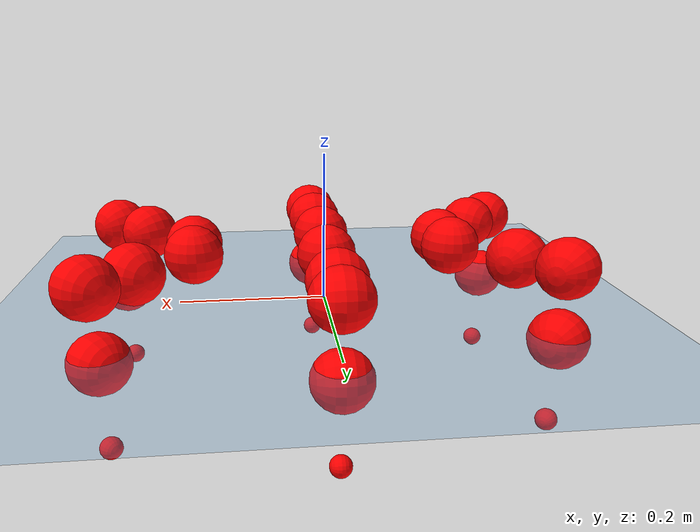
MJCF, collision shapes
<mujoco model="Golem">
  <compiler angle="radian" assetdir="assets" balanceinertia="true" inertiafromgeom="false"/>

  <option timestep="0.005" density="1.2" viscosity="2e-05"/>

  <size nkey="1"/>

  <visual>
    <quality shadowsize="8192"/>
    <map shadowclip="0.5"/>
  </visual>

  <default>
    <default class="/">
      <joint armature="0.01" damping="0.01" frictionloss="0.01"/>
      <geom contype="0" conaffinity="0" group="1" solref="-1000 -80"/>
      <site size="0.01 0.005 0.005" group="5"/>
      <general forcelimited="true" biastype="affine" gainprm="25" biasprm="0 -25 -0.5"/>
      <default class="visual">
        <geom type="mesh" group="2"/>
      </default>
      <default class="collision">
        <geom group="3"/>
      </default>
      <default class="foot">
        <geom size="0.01 0 0" condim="6" group="4" priority="1" solimp="0.015 1 0.01"/>
      </default>
      <default class="reward_collision_sphere">
        <geom group="5" rgba="1 0 0 1"/>
      </default>
    </default>
  </default>

  <asset>
    <texture type="skybox" colorspace="auto" name="//unnamed_texture_0" builtin="gradient" rgb1="0.95 0.95 0.95" rgb2="0.95 0.95 0.95" width="100" height="600"/>
    <texture type="2d" colorspace="auto" name="texplane" builtin="checker" rgb1="0.345 0.575 0.748" rgb2="0.345 0.575 0.748" markrgb="1 1 1" width="512" height="512"/>
    <material name="MatPlane" class="/" texture="texplane" texuniform="true" texrepeat="2 2" specular="0.9"/>
    <mesh name="body" class="/" file="body.stl" scale="0.001 0.001 0.001"/>
    <mesh name="coxa" class="/" file="coxa.stl" scale="0.001 0.001 0.001"/>
    <mesh name="femur" class="/" file="femur.stl" scale="0.001 0.001 0.001"/>
    <mesh name="tibia" class="/" file="tibia.stl" scale="0.001 0.001 0.001"/>
    <mesh name="tarsus" class="/" file="tarsus.stl" scale="0.001 0.001 0.001"/>
  </asset>

  <worldbody>
    <geom name="floor" class="/" size="100 100 0.125" type="plane" group="0" material="MatPlane"/>
    <light name="toplight_shadow" class="/" pos="0 0 5" dir="0.0990148 0.0990148 -0.990148" type="directional" ambient="0.04 0.04 0.04" diffuse="0.55 0.55 0.55" specular="0.12 0.12 0.12"/>
    <light name="toplight_fill" class="/" pos="0 0 5" dir="0.0990148 0.0990148 -0.990148" type="directional" castshadow="false" ambient="0.04 0.04 0.04" diffuse="0.3 0.3 0.3" specular="0.08 0.08 0.08"/>
    <body name="trunk" pos="0.00256138 -0.00138385 0.00152908" quat="1 0.00011166 -0.000279532 -0.000122059">
      <inertial pos="-0.00185348 -0.00215752 0.00196285" quat="0.999991 0.00244666 0.000507406 -0.00340351" mass="3.26458" diaginertia="0.0152139 0.000751998 0.0249898"/>
      <joint name="//unnamed_joint_0" type="free"/>
      <geom name="//unnamed_geom_1" class="/" pos="0 0 0.0764659" quat="1 0 0 0" type="mesh" rgba="0.9 0.9 0.9 1" mesh="body"/>
      <site name="imu" class="/" pos="0.134858 -0.00576369 0.11275" size="0.00961684"/>
      <camera name="track" class="/" pos="0 -1.19453 0" quat="0.707107 0.707107 0 0" mode="trackcom"/>
      <camera name="ego_camera" class="/" pos="0.142091 0 0.119478" quat="-0.5 -0.5 0.5 0.5"/>
      <body name="coxa_RR" pos="-0.193124 -0.0524159 0.0745766" quat="0.382649 -0.000317684 0.000339345 -0.923894">
        <inertial pos="0.000140321 0.00255567 -0.00199317" quat="0.999951 0.000917552 -0.00349718 -0.00919782" mass="0.179161" diaginertia="0.01592 0.00074236 0.0243039"/>
        <joint name="coxa_joint_RR" class="/" pos="0 0 0" axis="0.00244845 -0.000920293 -0.999997" range="-3.13352 3.14422" armature="0.00962371" damping="0.0193966" frictionloss="0.00870497"/>
        <geom name="//unnamed_geom_2" class="/" type="mesh" rgba="0.2 0.2 0.2 1" mesh="coxa"/>
        <geom name="//unnamed_geom_3" class="reward_collision_sphere" size="0.0384674" pos="-0.0327902 0 0"/>
        <body name="femur_RR" pos="0.0621644 0.00211449 -0.00033857" quat="0.499916 -0.500537 0.499855 0.499691">
          <inertial pos="-0.000254345 0.00143792 -0.00233618" quat="1 -0.000677655 0.000227317 -0.000114812" mass="0.17664" diaginertia="0.0154723 0.000749392 0.0240643"/>
          <joint name="femur_joint_RR" class="/" pos="0 0 0" axis="0.00106944 -0.00094319 -0.999999" range="-3.16089 3.17247" armature="0.00924698" damping="0.00969168" frictionloss="0.00939691"/>
          <geom name="//unnamed_geom_4" class="/" type="mesh" rgba="0.9 0.9 0.9 1" mesh="femur"/>
          <geom name="//unnamed_geom_5" class="reward_collision_sphere" size="0.0384674"/>
          <body name="tibia_RR" pos="0.00303163 -0.0648058 0.00338134" quat="-0.000209652 1 -0.000276425 0.000318624">
            <inertial pos="0.00191269 -0.000682287 0.00234392" quat="0.999959 -0.000403732 0.00896134 -0.00102918" mass="0.181825" diaginertia="0.0161064 0.000779046 0.0240309"/>
            <joint name="tibia_joint_RR" class="/" pos="0 0 0" axis="0.00255538 -0.0026578 0.999993" range="-3.18322 3.20995" armature="0.0084258" damping="0.0134422" frictionloss="0.010578"/>
            <geom name="//unnamed_geom_6" class="/" type="mesh" rgba="0.2 0.2 0.2 1" mesh="tibia"/>
            <geom name="//unnamed_geom_7" class="reward_collision_sphere" size="0.0384674"/>
            <body name="tarsus_RR" pos="0.0992468 0.00124068 -0.000953614" quat="1 0.000467851 -0.000332051 3.52571e-05">
              <inertial pos="0.066444 -0.00333798 0.000436291" quat="0.505909 0.499484 0.503025 0.491464" mass="0.169816" diaginertia="0.0149804 0.000740744 0.0239013"/>
              <joint name="tarsus_joint_RR" class="/" pos="0 0 0" axis="0.000344768 0.00110356 0.999999" range="-3.18553 3.12318" armature="0.0108801" damping="0.0435862" frictionloss="0.0105722"/>
              <geom name="//unnamed_geom_8" class="/" type="mesh" rgba="0.9 0.9 0.9 1" mesh="tarsus"/>
              <geom name="foot_1" class="foot" size="0.0103317" pos="0.122417 0 0" quat="0 -0.707107 0 0.707107"/>
              <geom name="//unnamed_geom_10" class="reward_collision_sphere" size="0.0384674"/>
              <geom name="//unnamed_geom_11" class="reward_collision_sphere" size="0.0144253" pos="0.117498 0 0"/>
              <site name="foot_1" class="foot" pos="0.122417 0 0" quat="0 -0.707107 0 0.707107" size="0.00961684"/>
            </body>
          </body>
        </body>
      </body>
      <body name="coxa_RM" pos="-0.00233044 -0.0766149 0.0791101" quat="0.707115 9.33522e-05 0.000492937 -0.707098">
        <inertial pos="-0.00107712 0.00232443 0.00307588" quat="0.999999 0.00025401 -0.000261339 0.00148004" mass="0.181235" diaginertia="0.0161537 0.000786248 0.025099"/>
        <joint name="coxa_joint_RM" class="/" pos="0 0 0" axis="-0.00433042 0.00807611 -0.999958" stiffness="0.0121109" range="-3.1865 3.08395" armature="0.0101049" damping="0.0339423" frictionloss="0.0111293"/>
        <geom name="//unnamed_geom_12" class="/" type="mesh" rgba="0.2 0.2 0.2 1" mesh="coxa"/>
        <geom name="//unnamed_geom_13" class="reward_collision_sphere" size="0.0384674" pos="-0.0327902 0 0"/>
        <body name="femur_RM" pos="0.059434 0.000919344 -0.000966068" quat="0.500793 -0.499475 0.500146 0.499585">
          <inertial pos="0.00107298 -0.00203414 0.00021122" quat="0.999916 0.00421102 -0.000296304 -0.0122228" mass="0.173214" diaginertia="0.0156307 0.000722797 0.0241932"/>
          <joint name="femur_joint_RM" class="/" pos="0 0 0" axis="-0.012897 0.00461464 -0.999906" range="-3.08776 3.09945" armature="0.00890586" damping="0.00790562" frictionloss="0.0096844"/>
          <geom name="//unnamed_geom_14" class="/" type="mesh" rgba="0.9 0.9 0.9 1" mesh="femur"/>
          <geom name="//unnamed_geom_15" class="reward_collision_sphere" size="0.0384674"/>
          <body name="tibia_RM" pos="0.000871238 -0.0621701 0.00107919" quat="7.12314e-05 1 9.55345e-06 -3.16556e-05">
            <inertial pos="0.0025285 0.00147621 0.00282875" quat="0.999912 0.0088452 0.00991366 -0.000491094" mass="0.176732" diaginertia="0.015712 0.000761326 0.0251824"/>
            <joint name="tibia_joint_RM" class="/" pos="0 0 0" axis="-0.000197452 2.67058e-05 1" range="-3.13592 3.18293" armature="0.0106516" damping="0" frictionloss="0.0103987"/>
            <geom name="//unnamed_geom_16" class="/" type="mesh" rgba="0.2 0.2 0.2 1" mesh="tibia"/>
            <geom name="//unnamed_geom_17" class="reward_collision_sphere" size="0.0384674"/>
            <body name="tarsus_RM" pos="0.0937839 -0.000663621 0.00317692" quat="0.999999 0.000901855 -0.000369642 -0.000815911">
              <inertial pos="0.0653512 0.00221411 -0.00174319" quat="0.500877 0.495004 0.502922 0.501161" mass="0.180333" diaginertia="0.0163079 0.00074949 0.0246793"/>
              <joint name="tarsus_joint_RM" class="/" pos="0 0 0" axis="-0.00781998 -0.00762719 0.99994" range="-3.13498 3.14622" armature="0.010377" damping="0.00366243" frictionloss="0.0103096"/>
              <geom name="//unnamed_geom_18" class="/" type="mesh" rgba="0.9 0.9 0.9 1" mesh="tarsus"/>
              <geom name="foot_2" class="foot" size="0.00962829" pos="0.122417 0 0" quat="0 -0.707107 0 0.707107"/>
              <geom name="//unnamed_geom_20" class="reward_collision_sphere" size="0.0384674"/>
              <geom name="//unnamed_geom_21" class="reward_collision_sphere" size="0.0144253" pos="0.117498 0 0"/>
              <site name="foot_2" class="foot" pos="0.122417 0 0" quat="0 -0.707107 0 0.707107" size="0.00961684"/>
            </body>
          </body>
        </body>
      </body>
      <body name="coxa_RF" pos="0.197749 -0.0488204 0.074519" quat="0.923813 -0.000459044 0.000135498 -0.382843">
        <inertial pos="-0.000630347 0.000199259 0.000817015" quat="0.999963 -0.00178898 0.0055715 -0.00631647" mass="0.178517" diaginertia="0.0150706 0.000777494 0.0245168"/>
        <joint name="coxa_joint_RF" class="/" pos="0 0 0" axis="0.00123299 0.00211373 -0.999997" range="-3.16684 3.10728" armature="0.00849801" damping="0.0256954" frictionloss="0.00911874"/>
        <geom name="//unnamed_geom_22" class="/" type="mesh" rgba="0.2 0.2 0.2 1" mesh="coxa"/>
        <geom name="//unnamed_geom_23" class="reward_collision_sphere" size="0.0384674" pos="-0.0327902 0 0"/>
        <body name="femur_RF" pos="0.0629443 0.00252376 -0.00016225" quat="0.499958 -0.49998 0.499546 0.500515">
          <inertial pos="-0.00082271 -0.00270858 -9.94679e-06" quat="0.99991 0.00358303 0.00737567 -0.0106164" mass="0.1725" diaginertia="0.0148199 0.000715012 0.0245623"/>
          <joint name="femur_joint_RF" class="/" pos="0 0 0" axis="-0.00251249 -0.0033898 -0.999991" range="-3.15637 3.15807" armature="0.00995462" damping="0.00502785" frictionloss="0.0108776"/>
          <geom name="//unnamed_geom_24" class="/" type="mesh" rgba="0.9 0.9 0.9 1" mesh="femur"/>
          <geom name="//unnamed_geom_25" class="reward_collision_sphere" size="0.0384674"/>
          <body name="tibia_RF" pos="0.00109552 -0.0681135 0.00153087" quat="0.000130476 1 -1.42439e-05 -4.99127e-05">
            <inertial pos="0.002497 0.00125616 -0.000508914" quat="0.99991 0.0105646 -0.00602137 0.00571614" mass="0.17523" diaginertia="0.0148068 0.000736757 0.0240869"/>
            <joint name="tibia_joint_RF" class="/" pos="0 0 0" axis="0.00090621 -0.00534911 0.999985" range="-3.11405 3.08822" armature="0.0106635" damping="0" frictionloss="0.00969571"/>
            <geom name="//unnamed_geom_26" class="/" type="mesh" rgba="0.2 0.2 0.2 1" mesh="tibia"/>
            <geom name="//unnamed_geom_27" class="reward_collision_sphere" size="0.0384674"/>
            <body name="tarsus_RF" pos="0.0996315 -0.00163581 -0.00265744" quat="0.999999 -0.000770701 -0.000565406 0.000326017">
              <inertial pos="0.0684156 0.00227688 -0.00246403" quat="0.488901 0.496112 0.505711 0.509024" mass="0.177166" diaginertia="0.0152041 0.000784265 0.0242401"/>
              <joint name="tarsus_joint_RF" class="/" pos="0 0 0" axis="0.000324411 0.000127122 1" stiffness="0.0187198" range="-3.18074 3.11219" armature="0.00789263" damping="0.0129249" frictionloss="0.00939666"/>
              <geom name="//unnamed_geom_28" class="/" type="mesh" rgba="0.9 0.9 0.9 1" mesh="tarsus"/>
              <geom name="foot_3" class="foot" size="0.00860944" pos="0.122417 0 0" quat="0 -0.707107 0 0.707107"/>
              <geom name="//unnamed_geom_30" class="reward_collision_sphere" size="0.0384674"/>
              <geom name="//unnamed_geom_31" class="reward_collision_sphere" size="0.0144253" pos="0.117498 0 0"/>
              <site name="foot_3" class="foot" pos="0.122417 0 0" quat="0 -0.707107 0 0.707107" size="0.00961684"/>
            </body>
          </body>
        </body>
      </body>
      <body name="coxa_LR" pos="-0.193555 0.0516061 0.0781034" quat="0.383031 0.000880519 0.000656349 0.923735">
        <inertial pos="-0.00257465 0.00255646 0.0038923" quat="1 -0.000282863 -6.26117e-05 0.000316277" mass="0.184152" diaginertia="0.016482 0.000764707 0.024955"/>
        <joint name="coxa_joint_LR" class="/" pos="0 0 0" axis="0.00993447 -0.00560359 -0.999935" range="-3.18348 3.09527" armature="0.0103632" damping="0.0179633" frictionloss="0.00866653"/>
        <geom name="//unnamed_geom_32" class="/" type="mesh" rgba="0.2 0.2 0.2 1" mesh="coxa"/>
        <geom name="//unnamed_geom_33" class="reward_collision_sphere" size="0.0384674" pos="-0.0327902 0 0"/>
        <body name="femur_LR" pos="0.0621665 5.93145e-05 0.0011927" quat="0.499793 -0.500198 0.499849 0.500161">
          <inertial pos="0.00279345 -0.000966931 0.00255429" quat="0.999945 0.00159796 -0.00959955 -0.00391363" mass="0.169953" diaginertia="0.0152833 0.000743126 0.0227345"/>
          <joint name="femur_joint_LR" class="/" pos="0 0 0" axis="0.011079 -0.00164287 0.999937" stiffness="0.0030633" range="-3.20102 3.14068" armature="0.0103154" damping="0.00885282" frictionloss="0.00890328"/>
          <geom name="//unnamed_geom_34" class="/" type="mesh" rgba="0.9 0.9 0.9 1" mesh="femur"/>
          <geom name="//unnamed_geom_35" class="reward_collision_sphere" size="0.0384674"/>
          <body name="tibia_LR" pos="-0.000914272 -0.0650025 -0.00105326" quat="-0.000899881 1 0.000302524 0.000297548">
            <inertial pos="-0.00120713 0.00253716 0.000646838" quat="0.999969 -0.00688081 -0.00127519 0.00346908" mass="0.176835" diaginertia="0.0156979 0.000776861 0.0241195"/>
            <joint name="tibia_joint_LR" class="/" pos="0 0 0" axis="0.00544707 0.00115139 -0.999985" range="-3.13713 3.17242" armature="0.00891042" damping="0.0343673" frictionloss="0.0102738"/>
            <geom name="//unnamed_geom_36" class="/" type="mesh" rgba="0.2 0.2 0.2 1" mesh="tibia"/>
            <geom name="//unnamed_geom_37" class="reward_collision_sphere" size="0.0384674"/>
            <body name="tarsus_LR" pos="0.0921024 0.00213685 0.00314142" quat="1 0.000218241 -0.00011199 -0.000321704">
              <inertial pos="0.0633754 -0.000672552 -0.000617735" quat="0.50206 0.498165 0.503524 0.496216" mass="0.177046" diaginertia="0.016439 0.000781735 0.0257291"/>
              <joint name="tarsus_joint_LR" class="/" pos="0 0 0" axis="0.00154965 -0.00672935 -0.999976" stiffness="0.00948174" range="-3.11987 3.12596" armature="0.00939037" damping="0.0363685" frictionloss="0.0102456"/>
              <geom name="//unnamed_geom_38" class="/" type="mesh" rgba="0.9 0.9 0.9 1" mesh="tarsus"/>
              <geom name="foot_4" class="foot" size="0.00943001" pos="0.122417 0 0" quat="0.707107 0 -0.707107 0"/>
              <geom name="//unnamed_geom_40" class="reward_collision_sphere" size="0.0384674"/>
              <geom name="//unnamed_geom_41" class="reward_collision_sphere" size="0.0144253" pos="0.117498 0 0"/>
              <site name="foot_4" class="foot" pos="0.122417 0 0" quat="0.707107 0 -0.707107 0" size="0.00961684"/>
            </body>
          </body>
        </body>
      </body>
      <body name="coxa_LM" pos="-0.000508984 0.0804113 0.0771304" quat="0.707164 8.1627e-05 0.000849521 0.707049">
        <inertial pos="0.000950094 -0.00274045 -0.00022251" quat="0.999996 0.0017841 -0.00223793 0.000407733" mass="0.183659" diaginertia="0.0159464 0.00079317 0.024217"/>
        <joint name="coxa_joint_LM" class="/" pos="0 0 0" axis="0.00577273 -0.00430323 -0.999974" range="-3.13438 3.15096" armature="0.00869092" damping="0.0216427" frictionloss="0.00904622"/>
        <geom name="//unnamed_geom_42" class="/" type="mesh" rgba="0.2 0.2 0.2 1" mesh="coxa"/>
        <geom name="//unnamed_geom_43" class="reward_collision_sphere" size="0.0384674" pos="-0.0327902 0 0"/>
        <body name="femur_LM" pos="0.0632769 0.00181987 -0.000571928" quat="0.499915 -0.49954 0.50051 0.500035">
          <inertial pos="0.000137053 0.00188905 -0.00141303" quat="0.999992 0.00343223 -0.00125923 -0.00163685" mass="0.178054" diaginertia="0.0160081 0.000761982 0.0235165"/>
          <joint name="femur_joint_LM" class="/" pos="0 0 0" axis="-0.0117305 -0.00197631 0.999929" range="-3.10691 3.13629" armature="0.0108533" damping="0.00524366" frictionloss="0.0100884"/>
          <geom name="//unnamed_geom_44" class="/" type="mesh" rgba="0.9 0.9 0.9 1" mesh="femur"/>
          <geom name="//unnamed_geom_45" class="reward_collision_sphere" size="0.0384674"/>
          <body name="tibia_LM" pos="0.00023772 -0.0603019 -0.00256369" quat="0.000298097 1 -2.12618e-05 -7.04903e-05">
            <inertial pos="-0.00138737 0.00198731 -0.0030544" quat="0.999872 0.00937422 -0.00783882 0.0103495" mass="0.183301" diaginertia="0.0153297 0.000778245 0.0244943"/>
            <joint name="tibia_joint_LM" class="/" pos="0 0 0" axis="0.000505357 -0.000607637 -1" stiffness="0.0134559" range="-3.12985 3.1657" armature="0.0109149" damping="0.0108319" frictionloss="0.0099311"/>
            <geom name="//unnamed_geom_46" class="/" type="mesh" rgba="0.2 0.2 0.2 1" mesh="tibia"/>
            <geom name="//unnamed_geom_47" class="reward_collision_sphere" size="0.0384674"/>
            <body name="tarsus_LM" pos="0.0980505 0.00251971 -0.0013866" quat="0.999999 -5.74349e-05 -0.000410008 -0.00119632">
              <inertial pos="0.0630077 -0.00126419 0.000565496" quat="0.493805 0.500791 0.496181 0.509087" mass="0.171725" diaginertia="0.0148019 0.000740092 0.0233989"/>
              <joint name="tarsus_joint_LM" class="/" pos="0 0 0" axis="-0.00498756 -0.000387164 -0.999987" stiffness="0.0180828" range="-3.14051 3.16137" armature="0.00840647" damping="0.0273526" frictionloss="0.0096409"/>
              <geom name="//unnamed_geom_48" class="/" type="mesh" rgba="0.9 0.9 0.9 1" mesh="tarsus"/>
              <geom name="foot_5" class="foot" size="0.00946225" pos="0.122417 0 0" quat="0.707107 0 -0.707107 0"/>
              <geom name="//unnamed_geom_50" class="reward_collision_sphere" size="0.0384674"/>
              <geom name="//unnamed_geom_51" class="reward_collision_sphere" size="0.0144253" pos="0.117498 0 0"/>
              <site name="foot_5" class="foot" pos="0.122417 0 0" quat="0.707107 0 -0.707107 0" size="0.00961684"/>
            </body>
          </body>
        </body>
      </body>
      <body name="coxa_LF" pos="0.194836 0.0502086 0.0750586" quat="0.924055 -0.000669296 0.000163139 0.382258">
        <inertial pos="0.0029732 -0.00249602 0.00227261" quat="0.999875 0.0147831 -0.00156992 0.00540649" mass="0.177175" diaginertia="0.0155407 0.000761606 0.0258236"/>
        <joint name="coxa_joint_LF" class="/" pos="0 0 0" axis="0.0193421 -0.00494759 -0.999801" stiffness="0.0232828" range="-3.13596 3.1387" armature="0.0097905" damping="0.00954215" frictionloss="0.0106735"/>
        <geom name="//unnamed_geom_52" class="/" type="mesh" rgba="0.2 0.2 0.2 1" mesh="coxa"/>
        <geom name="//unnamed_geom_53" class="reward_collision_sphere" size="0.0384674" pos="-0.0327902 0 0"/>
        <body name="femur_LF" pos="0.0646244 0.00372533 0.00114602" quat="0.500233 -0.500249 0.500217 0.4993">
          <inertial pos="-0.00101787 -0.00308058 -0.00215933" quat="0.999912 -0.00345577 0.00851403 0.00961013" mass="0.174804" diaginertia="0.0158661 0.00076303 0.0254959"/>
          <joint name="femur_joint_LF" class="/" pos="0 0 0" axis="-0.00284128 -0.00520631 0.999982" range="-3.12673 3.07237" armature="0.0100379" damping="0.0207304" frictionloss="0.00964882"/>
          <geom name="//unnamed_geom_54" class="/" type="mesh" rgba="0.9 0.9 0.9 1" mesh="femur"/>
          <geom name="//unnamed_geom_55" class="reward_collision_sphere" size="0.0384674"/>
          <body name="tibia_LF" pos="-0.0019979 -0.0655167 0.00227932" quat="0.000105963 1 0.000383665 0.000365531">
            <inertial pos="-0.00171265 0.00308571 0.000715638" quat="0.999993 0.00271165 0.00272454 -0.000451362" mass="0.178889" diaginertia="0.0156203 0.000757173 0.0243761"/>
            <joint name="tibia_joint_LF" class="/" pos="0 0 0" axis="-0.00136693 -0.000814393 -0.999999" stiffness="0.00336002" range="-3.1907 3.15583" armature="0.0105119" damping="0.00109965" frictionloss="0.0109113"/>
            <geom name="//unnamed_geom_56" class="/" type="mesh" rgba="0.2 0.2 0.2 1" mesh="tibia"/>
            <geom name="//unnamed_geom_57" class="reward_collision_sphere" size="0.0384674"/>
            <body name="tarsus_LF" pos="0.0945872 -0.0020418 -0.00426456" quat="0.999999 0.000910269 0.00104412 4.9403e-05">
              <inertial pos="0.0658659 0.00332812 0.000145742" quat="0.500672 0.501194 0.49978 0.498349" mass="0.173362" diaginertia="0.0147663 0.000722975 0.0235529"/>
              <joint name="tarsus_joint_LF" class="/" pos="0 0 0" axis="-0.00612053 -0.0121166 -0.999908" stiffness="0.0264675" range="-3.10611 3.0979" armature="0.00964851" damping="0.0101565" frictionloss="0.00946347"/>
              <geom name="//unnamed_geom_58" class="/" type="mesh" rgba="0.9 0.9 0.9 1" mesh="tarsus"/>
              <geom name="foot_6" class="foot" size="0.0091494" pos="0.122417 0 0" quat="0.707107 0 -0.707107 0"/>
              <geom name="//unnamed_geom_60" class="reward_collision_sphere" size="0.0384674"/>
              <geom name="//unnamed_geom_61" class="reward_collision_sphere" size="0.0144253" pos="0.117498 0 0"/>
              <site name="foot_6" class="foot" pos="0.122417 0 0" quat="0.707107 0 -0.707107 0" size="0.00961684"/>
            </body>
          </body>
        </body>
      </body>
    </body>
  </worldbody>

  <contact>
    <pair class="/" geom1="floor" geom2="foot_1" name="//unnamed_contact_0"/>
    <pair class="/" geom1="floor" geom2="foot_2" name="//unnamed_contact_1"/>
    <pair class="/" geom1="floor" geom2="foot_3" name="//unnamed_contact_2"/>
    <pair class="/" geom1="floor" geom2="foot_4" name="//unnamed_contact_3"/>
    <pair class="/" geom1="floor" geom2="foot_5" name="//unnamed_contact_4"/>
    <pair class="/" geom1="floor" geom2="foot_6" name="//unnamed_contact_5"/>
  </contact>

  <actuator>
    <general name="coxa_joint_RR" class="/" joint="coxa_joint_RR" forcerange="-7.6704 7.6704" gainprm="22.8517" biasprm="0 -22.8517 -0.482831"/>
    <general name="femur_joint_RR" class="/" joint="femur_joint_RR" forcerange="-6.47953 6.47953" gainprm="22.8517" biasprm="0 -22.8517 -0.482831"/>
    <general name="tibia_joint_RR" class="/" joint="tibia_joint_RR" forcerange="-7.65825 7.65825" gainprm="22.8517" biasprm="0 -22.8517 -0.482831"/>
    <general name="tarsus_joint_RR" class="/" joint="tarsus_joint_RR" forcerange="-6.70099 6.70099" gainprm="22.8517" biasprm="0 -22.8517 -0.482831"/>
    <general name="coxa_joint_RM" class="/" joint="coxa_joint_RM" forcerange="-7.03962 7.03962" gainprm="22.8517" biasprm="0 -22.8517 -0.482831"/>
    <general name="femur_joint_RM" class="/" joint="femur_joint_RM" forcerange="-7.03775 7.03775" gainprm="22.8517" biasprm="0 -22.8517 -0.482831"/>
    <general name="tibia_joint_RM" class="/" joint="tibia_joint_RM" forcerange="-7.85979 7.85979" gainprm="22.8517" biasprm="0 -22.8517 -0.482831"/>
    <general name="tarsus_joint_RM" class="/" joint="tarsus_joint_RM" forcerange="-6.31519 6.31519" gainprm="22.8517" biasprm="0 -22.8517 -0.482831"/>
    <general name="coxa_joint_RF" class="/" joint="coxa_joint_RF" forcerange="-6.95786 6.95786" gainprm="22.8517" biasprm="0 -22.8517 -0.482831"/>
    <general name="femur_joint_RF" class="/" joint="femur_joint_RF" forcerange="-6.17854 6.17854" gainprm="22.8517" biasprm="0 -22.8517 -0.482831"/>
    <general name="tibia_joint_RF" class="/" joint="tibia_joint_RF" forcerange="-7.56475 7.56475" gainprm="22.8517" biasprm="0 -22.8517 -0.482831"/>
    <general name="tarsus_joint_RF" class="/" joint="tarsus_joint_RF" forcerange="-6.19999 6.19999" gainprm="22.8517" biasprm="0 -22.8517 -0.482831"/>
    <general name="coxa_joint_LR" class="/" joint="coxa_joint_LR" forcerange="-7.15759 7.15759" gainprm="22.8517" biasprm="0 -22.8517 -0.482831"/>
    <general name="femur_joint_LR" class="/" joint="femur_joint_LR" forcerange="-7.70825 7.70825" gainprm="22.8517" biasprm="0 -22.8517 -0.482831"/>
    <general name="tibia_joint_LR" class="/" joint="tibia_joint_LR" forcerange="-7.43803 7.43803" gainprm="22.8517" biasprm="0 -22.8517 -0.482831"/>
    <general name="tarsus_joint_LR" class="/" joint="tarsus_joint_LR" forcerange="-7.2578 7.2578" gainprm="22.8517" biasprm="0 -22.8517 -0.482831"/>
    <general name="coxa_joint_LM" class="/" joint="coxa_joint_LM" forcerange="-7.60166 7.60166" gainprm="22.8517" biasprm="0 -22.8517 -0.482831"/>
    <general name="femur_joint_LM" class="/" joint="femur_joint_LM" forcerange="-6.92445 6.92445" gainprm="22.8517" biasprm="0 -22.8517 -0.482831"/>
    <general name="tibia_joint_LM" class="/" joint="tibia_joint_LM" forcerange="-7.51531 7.51531" gainprm="22.8517" biasprm="0 -22.8517 -0.482831"/>
    <general name="tarsus_joint_LM" class="/" joint="tarsus_joint_LM" forcerange="-6.82987 6.82987" gainprm="22.8517" biasprm="0 -22.8517 -0.482831"/>
    <general name="coxa_joint_LF" class="/" joint="coxa_joint_LF" forcerange="-7.72033 7.72033" gainprm="22.8517" biasprm="0 -22.8517 -0.482831"/>
    <general name="femur_joint_LF" class="/" joint="femur_joint_LF" forcerange="-7.23054 7.23054" gainprm="22.8517" biasprm="0 -22.8517 -0.482831"/>
    <general name="tibia_joint_LF" class="/" joint="tibia_joint_LF" forcerange="-6.82632 6.82632" gainprm="22.8517" biasprm="0 -22.8517 -0.482831"/>
    <general name="tarsus_joint_LF" class="/" joint="tarsus_joint_LF" forcerange="-7.087 7.087" gainprm="22.8517" biasprm="0 -22.8517 -0.482831"/>
  </actuator>

  <sensor>
    <gyro site="imu" name="imu_angular_velocity"/>
    <velocimeter site="imu" name="imu_linear_velocity"/>
    <framelinvel objtype="site" objname="foot_1" name="foot_1_global_linear_velocity"/>
    <framelinvel objtype="site" objname="foot_2" name="foot_2_global_linear_velocity"/>
    <framelinvel objtype="site" objname="foot_3" name="foot_3_global_linear_velocity"/>
    <framelinvel objtype="site" objname="foot_4" name="foot_4_global_linear_velocity"/>
    <framelinvel objtype="site" objname="foot_5" name="foot_5_global_linear_velocity"/>
    <framelinvel objtype="site" objname="foot_6" name="foot_6_global_linear_velocity"/>
  </sensor>

  <keyframe>
    <key name="home" qpos="0 0 0.1457 1 0 0 0 0 0 0 0 0 0 0 0 0 0 0 0 0 0 0 0 0 0 0 0 0 0 0 0"/>
  </keyframe>
</mujoco>
